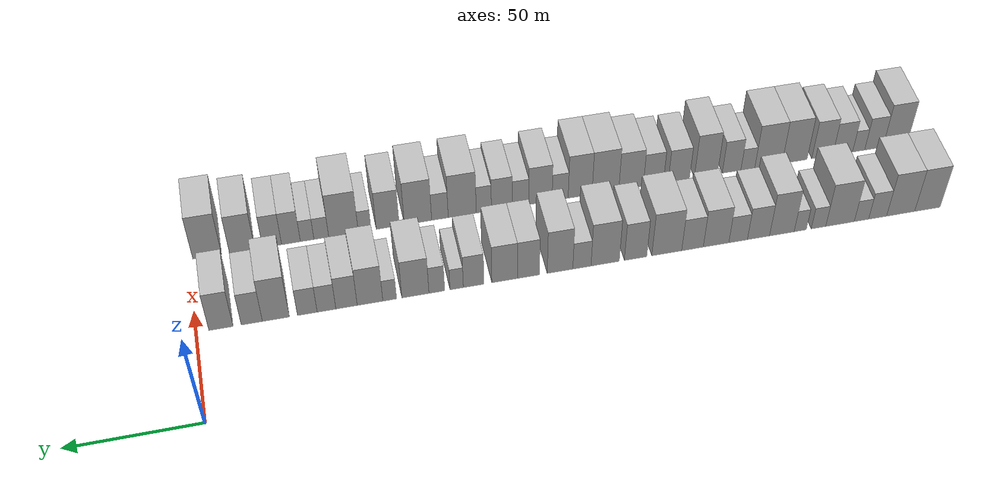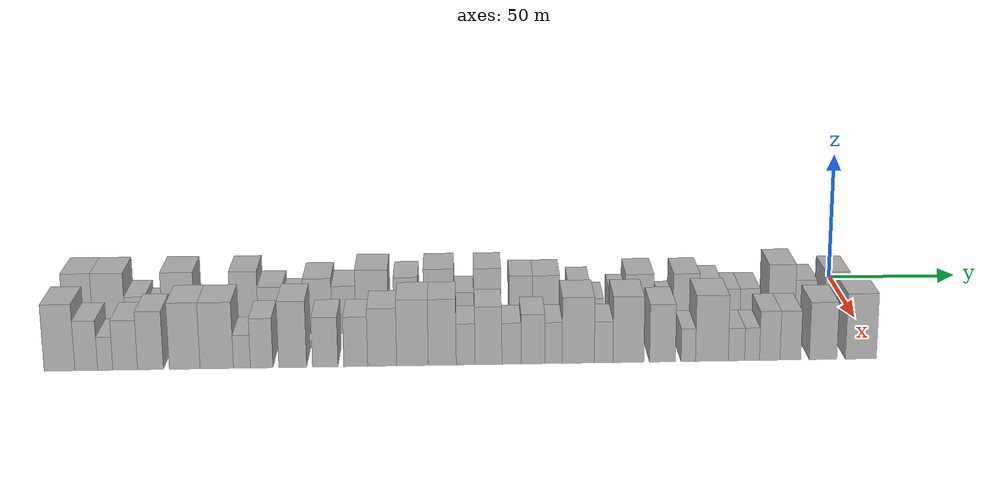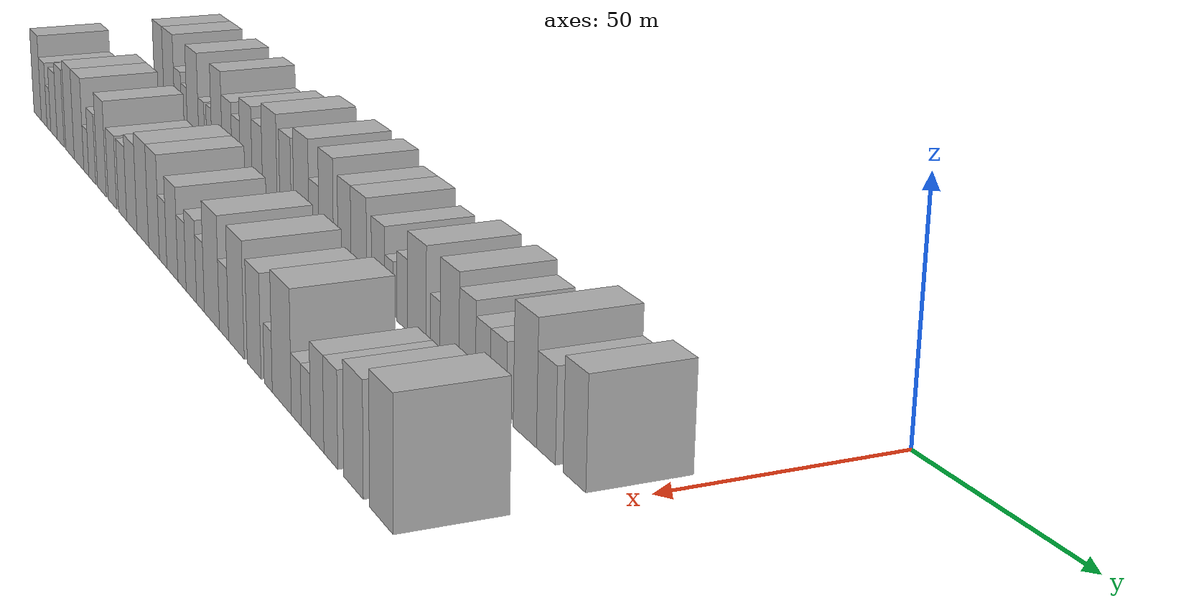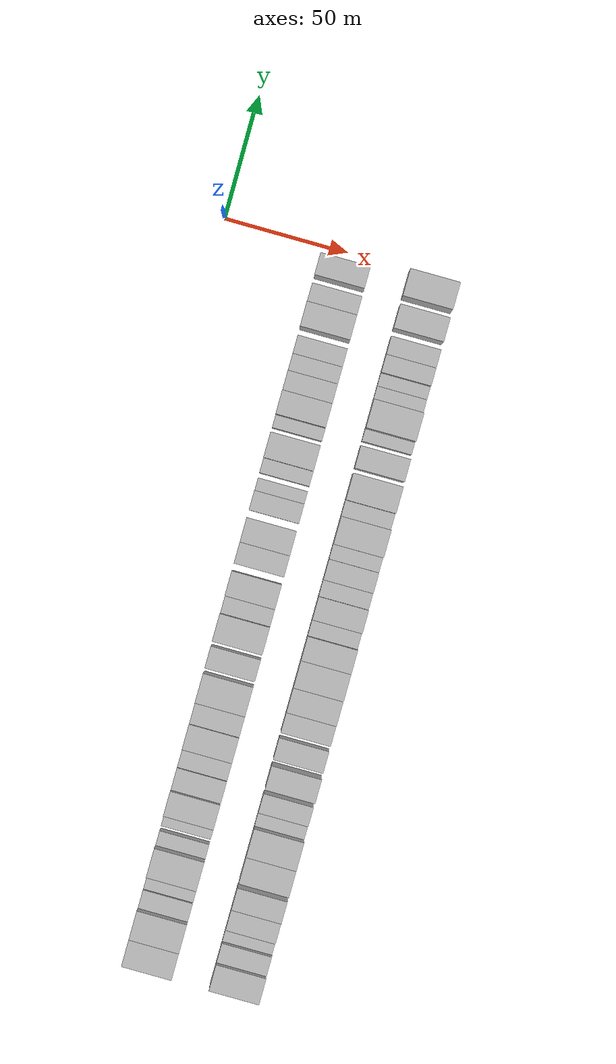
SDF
<sdf version="1.6">
 <world name="default">
  <model name="building_1">
   <static>1</static>
   <pose>50.0000 -284.7026 0 0.000000 0.000000 0.000000</pose>
   <link name="link">
    <pose>0 0 12.00 0 0 0</pose>
    <collision name="collision"><geometry><box><size>20.0000 10.5947 24.0000</size></box></geometry></collision>
    <visual name="visual">
     <cast_shadows>0</cast_shadows>
     <geometry><box><size>20.0000 10.5947 24.0000</size></box></geometry>
     <material>
      <script>
       <uri>model://HANNAS_wall/materials/scripts</uri>
       <uri>model://HANNAS_wall/materials/textures</uri>
       <name>vrc/HANNAS_wall</name>
      </script>
     </material>
    </visual>
   </link>
  </model>
  <model name="building_2">
   <static>1</static>
   <pose>50.0000 -273.5966 0 0.000000 0.000000 0.000000</pose>
   <link name="link">
    <pose>0 0 12.00 0 0 0</pose>
    <collision name="collision"><geometry><box><size>20.0000 11.6172 24.0000</size></box></geometry></collision>
    <visual name="visual">
     <cast_shadows>0</cast_shadows>
     <geometry><box><size>20.0000 11.6172 24.0000</size></box></geometry>
     <material>
      <script>
       <uri>model://HANNAS_wall/materials/scripts</uri>
       <uri>model://HANNAS_wall/materials/textures</uri>
       <name>vrc/HANNAS_wall</name>
      </script>
     </material>
    </visual>
   </link>
  </model>
  <model name="building_3">
   <static>1</static>
   <pose>50.0000 -264.0849 0 0.000000 0.000000 0.000000</pose>
   <link name="link">
    <pose>0 0 7.50 0 0 0</pose>
    <collision name="collision"><geometry><box><size>20.0000 7.4063 15.0000</size></box></geometry></collision>
    <visual name="visual">
     <cast_shadows>0</cast_shadows>
     <geometry><box><size>20.0000 7.4063 15.0000</size></box></geometry>
     <material>
      <script>
       <uri>model://HANNAS_wall/materials/scripts</uri>
       <uri>model://HANNAS_wall/materials/textures</uri>
       <name>vrc/HANNAS_wall</name>
      </script>
     </material>
    </visual>
   </link>
  </model>
  <model name="building_4">
   <static>1</static>
   <pose>50.0000 -257.4461 0 0.000000 0.000000 0.000000</pose>
   <link name="link">
    <pose>0 0 6.00 0 0 0</pose>
    <collision name="collision"><geometry><box><size>20.0000 5.8713 12.0000</size></box></geometry></collision>
    <visual name="visual">
     <cast_shadows>0</cast_shadows>
     <geometry><box><size>20.0000 5.8713 12.0000</size></box></geometry>
     <material>
      <script>
       <uri>model://HANNAS_wall/materials/scripts</uri>
       <uri>model://HANNAS_wall/materials/textures</uri>
       <name>vrc/HANNAS_wall</name>
      </script>
     </material>
    </visual>
   </link>
  </model>
  <model name="building_5">
   <static>1</static>
   <pose>50.0000 -248.6617 0 0.000000 0.000000 0.000000</pose>
   <link name="link">
    <pose>0 0 12.00 0 0 0</pose>
    <collision name="collision"><geometry><box><size>20.0000 11.6974 24.0000</size></box></geometry></collision>
    <visual name="visual">
     <cast_shadows>0</cast_shadows>
     <geometry><box><size>20.0000 11.6974 24.0000</size></box></geometry>
     <material>
      <script>
       <uri>model://HANNAS_wall/materials/scripts</uri>
       <uri>model://HANNAS_wall/materials/textures</uri>
       <name>vrc/HANNAS_wall</name>
      </script>
     </material>
    </visual>
   </link>
  </model>
  <model name="building_6">
   <static>1</static>
   <pose>50.0000 -239.8674 0 0.000000 0.000000 0.000000</pose>
   <link name="link">
    <pose>0 0 6.00 0 0 0</pose>
    <collision name="collision"><geometry><box><size>20.0000 5.8914 12.0000</size></box></geometry></collision>
    <visual name="visual">
     <cast_shadows>0</cast_shadows>
     <geometry><box><size>20.0000 5.8914 12.0000</size></box></geometry>
     <material>
      <script>
       <uri>model://HANNAS_wall/materials/scripts</uri>
       <uri>model://HANNAS_wall/materials/textures</uri>
       <name>vrc/HANNAS_wall</name>
      </script>
     </material>
    </visual>
   </link>
  </model>
  <model name="building_7">
   <static>1</static>
   <pose>50.0000 -232.4474 0 0.000000 0.000000 0.000000</pose>
   <link name="link">
    <pose>0 0 6.00 0 0 0</pose>
    <collision name="collision"><geometry><box><size>20.0000 4.9485 12.0000</size></box></geometry></collision>
    <visual name="visual">
     <cast_shadows>0</cast_shadows>
     <geometry><box><size>20.0000 4.9485 12.0000</size></box></geometry>
     <material>
      <script>
       <uri>model://HANNAS_wall/materials/scripts</uri>
       <uri>model://HANNAS_wall/materials/textures</uri>
       <name>vrc/HANNAS_wall</name>
      </script>
     </material>
    </visual>
   </link>
  </model>
  <model name="building_8">
   <static>1</static>
   <pose>50.0000 -224.9844 0 0.000000 0.000000 0.000000</pose>
   <link name="link">
    <pose>0 0 12.00 0 0 0</pose>
    <collision name="collision"><geometry><box><size>20.0000 9.9776 24.0000</size></box></geometry></collision>
    <visual name="visual">
     <cast_shadows>0</cast_shadows>
     <geometry><box><size>20.0000 9.9776 24.0000</size></box></geometry>
     <material>
      <script>
       <uri>model://HANNAS_wall/materials/scripts</uri>
       <uri>model://HANNAS_wall/materials/textures</uri>
       <name>vrc/HANNAS_wall</name>
      </script>
     </material>
    </visual>
   </link>
  </model>
  <model name="building_9">
   <static>1</static>
   <pose>50.0000 -215.5335 0 0.000000 0.000000 0.000000</pose>
   <link name="link">
    <pose>0 0 9.00 0 0 0</pose>
    <collision name="collision"><geometry><box><size>20.0000 8.9242 18.0000</size></box></geometry></collision>
    <visual name="visual">
     <cast_shadows>0</cast_shadows>
     <geometry><box><size>20.0000 8.9242 18.0000</size></box></geometry>
     <material>
      <script>
       <uri>model://HANNAS_wall/materials/scripts</uri>
       <uri>model://HANNAS_wall/materials/textures</uri>
       <name>vrc/HANNAS_wall</name>
      </script>
     </material>
    </visual>
   </link>
  </model>
  <model name="building_10">
   <static>1</static>
   <pose>50.0000 -207.3426 0 0.000000 0.000000 0.000000</pose>
   <link name="link">
    <pose>0 0 7.50 0 0 0</pose>
    <collision name="collision"><geometry><box><size>20.0000 7.4575 15.0000</size></box></geometry></collision>
    <visual name="visual">
     <cast_shadows>0</cast_shadows>
     <geometry><box><size>20.0000 7.4575 15.0000</size></box></geometry>
     <material>
      <script>
       <uri>model://HANNAS_wall/materials/scripts</uri>
       <uri>model://HANNAS_wall/materials/textures</uri>
       <name>vrc/HANNAS_wall</name>
      </script>
     </material>
    </visual>
   </link>
  </model>
  <model name="building_11">
   <static>1</static>
   <pose>50.0000 -198.5121 0 0.000000 0.000000 0.000000</pose>
   <link name="link">
    <pose>0 0 10.50 0 0 0</pose>
    <collision name="collision"><geometry><box><size>20.0000 10.2037 21.0000</size></box></geometry></collision>
    <visual name="visual">
     <cast_shadows>0</cast_shadows>
     <geometry><box><size>20.0000 10.2037 21.0000</size></box></geometry>
     <material>
      <script>
       <uri>model://HANNAS_wall/materials/scripts</uri>
       <uri>model://HANNAS_wall/materials/textures</uri>
       <name>vrc/HANNAS_wall</name>
      </script>
     </material>
    </visual>
   </link>
  </model>
  <model name="building_12">
   <static>1</static>
   <pose>50.0000 -189.1027 0 0.000000 0.000000 0.000000</pose>
   <link name="link">
    <pose>0 0 9.00 0 0 0</pose>
    <collision name="collision"><geometry><box><size>20.0000 8.6149 18.0000</size></box></geometry></collision>
    <visual name="visual">
     <cast_shadows>0</cast_shadows>
     <geometry><box><size>20.0000 8.6149 18.0000</size></box></geometry>
     <material>
      <script>
       <uri>model://HANNAS_wall/materials/scripts</uri>
       <uri>model://HANNAS_wall/materials/textures</uri>
       <name>vrc/HANNAS_wall</name>
      </script>
     </material>
    </visual>
   </link>
  </model>
  <model name="building_13">
   <static>1</static>
   <pose>50.0000 -178.8727 0 0.000000 0.000000 0.000000</pose>
   <link name="link">
    <pose>0 0 12.00 0 0 0</pose>
    <collision name="collision"><geometry><box><size>20.0000 11.8451 24.0000</size></box></geometry></collision>
    <visual name="visual">
     <cast_shadows>0</cast_shadows>
     <geometry><box><size>20.0000 11.8451 24.0000</size></box></geometry>
     <material>
      <script>
       <uri>model://HANNAS_wall/materials/scripts</uri>
       <uri>model://HANNAS_wall/materials/textures</uri>
       <name>vrc/HANNAS_wall</name>
      </script>
     </material>
    </visual>
   </link>
  </model>
  <model name="building_14">
   <static>1</static>
   <pose>50.0000 -166.5378 0 0.000000 0.000000 0.000000</pose>
   <link name="link">
    <pose>0 0 10.50 0 0 0</pose>
    <collision name="collision"><geometry><box><size>20.0000 8.8249 21.0000</size></box></geometry></collision>
    <visual name="visual">
     <cast_shadows>0</cast_shadows>
     <geometry><box><size>20.0000 8.8249 21.0000</size></box></geometry>
     <material>
      <script>
       <uri>model://HANNAS_wall/materials/scripts</uri>
       <uri>model://HANNAS_wall/materials/textures</uri>
       <name>vrc/HANNAS_wall</name>
      </script>
     </material>
    </visual>
   </link>
  </model>
  <model name="building_15">
   <static>1</static>
   <pose>50.0000 -154.5810 0 0.000000 0.000000 0.000000</pose>
   <link name="link">
    <pose>0 0 12.00 0 0 0</pose>
    <collision name="collision"><geometry><box><size>20.0000 11.0885 24.0000</size></box></geometry></collision>
    <visual name="visual">
     <cast_shadows>0</cast_shadows>
     <geometry><box><size>20.0000 11.0885 24.0000</size></box></geometry>
     <material>
      <script>
       <uri>model://HANNAS_wall/materials/scripts</uri>
       <uri>model://HANNAS_wall/materials/textures</uri>
       <name>vrc/HANNAS_wall</name>
      </script>
     </material>
    </visual>
   </link>
  </model>
  <model name="building_16">
   <static>1</static>
   <pose>50.0000 -145.4833 0 0.000000 0.000000 0.000000</pose>
   <link name="link">
    <pose>0 0 7.50 0 0 0</pose>
    <collision name="collision"><geometry><box><size>20.0000 7.1070 15.0000</size></box></geometry></collision>
    <visual name="visual">
     <cast_shadows>0</cast_shadows>
     <geometry><box><size>20.0000 7.1070 15.0000</size></box></geometry>
     <material>
      <script>
       <uri>model://HANNAS_wall/materials/scripts</uri>
       <uri>model://HANNAS_wall/materials/textures</uri>
       <name>vrc/HANNAS_wall</name>
      </script>
     </material>
    </visual>
   </link>
  </model>
  <model name="building_17">
   <static>1</static>
   <pose>50.0000 -136.9539 0 0.000000 0.000000 0.000000</pose>
   <link name="link">
    <pose>0 0 12.00 0 0 0</pose>
    <collision name="collision"><geometry><box><size>20.0000 9.9518 24.0000</size></box></geometry></collision>
    <visual name="visual">
     <cast_shadows>0</cast_shadows>
     <geometry><box><size>20.0000 9.9518 24.0000</size></box></geometry>
     <material>
      <script>
       <uri>model://HANNAS_wall/materials/scripts</uri>
       <uri>model://HANNAS_wall/materials/textures</uri>
       <name>vrc/HANNAS_wall</name>
      </script>
     </material>
    </visual>
   </link>
  </model>
  <model name="building_18">
   <static>1</static>
   <pose>50.0000 -124.7235 0 0.000000 0.000000 0.000000</pose>
   <link name="link">
    <pose>0 0 10.50 0 0 0</pose>
    <collision name="collision"><geometry><box><size>20.0000 8.5091 21.0000</size></box></geometry></collision>
    <visual name="visual">
     <cast_shadows>0</cast_shadows>
     <geometry><box><size>20.0000 8.5091 21.0000</size></box></geometry>
     <material>
      <script>
       <uri>model://HANNAS_wall/materials/scripts</uri>
       <uri>model://HANNAS_wall/materials/textures</uri>
       <name>vrc/HANNAS_wall</name>
      </script>
     </material>
    </visual>
   </link>
  </model>
  <model name="building_19">
   <static>1</static>
   <pose>50.0000 -115.5313 0 0.000000 0.000000 0.000000</pose>
   <link name="link">
    <pose>0 0 10.50 0 0 0</pose>
    <collision name="collision"><geometry><box><size>20.0000 9.8753 21.0000</size></box></geometry></collision>
    <visual name="visual">
     <cast_shadows>0</cast_shadows>
     <geometry><box><size>20.0000 9.8753 21.0000</size></box></geometry>
     <material>
      <script>
       <uri>model://HANNAS_wall/materials/scripts</uri>
       <uri>model://HANNAS_wall/materials/textures</uri>
       <name>vrc/HANNAS_wall</name>
      </script>
     </material>
    </visual>
   </link>
  </model>
  <model name="building_20">
   <static>1</static>
   <pose>50.0000 -103.6340 0 0.000000 0.000000 0.000000</pose>
   <link name="link">
    <pose>0 0 9.00 0 0 0</pose>
    <collision name="collision"><geometry><box><size>20.0000 7.9193 18.0000</size></box></geometry></collision>
    <visual name="visual">
     <cast_shadows>0</cast_shadows>
     <geometry><box><size>20.0000 7.9193 18.0000</size></box></geometry>
     <material>
      <script>
       <uri>model://HANNAS_wall/materials/scripts</uri>
       <uri>model://HANNAS_wall/materials/textures</uri>
       <name>vrc/HANNAS_wall</name>
      </script>
     </material>
    </visual>
   </link>
  </model>
  <model name="building_21">
   <static>1</static>
   <pose>50.0000 -97.1221 0 0.000000 0.000000 0.000000</pose>
   <link name="link">
    <pose>0 0 6.00 0 0 0</pose>
    <collision name="collision"><geometry><box><size>20.0000 5.1045 12.0000</size></box></geometry></collision>
    <visual name="visual">
     <cast_shadows>0</cast_shadows>
     <geometry><box><size>20.0000 5.1045 12.0000</size></box></geometry>
     <material>
      <script>
       <uri>model://HANNAS_wall/materials/scripts</uri>
       <uri>model://HANNAS_wall/materials/textures</uri>
       <name>vrc/HANNAS_wall</name>
      </script>
     </material>
    </visual>
   </link>
  </model>
  <model name="building_22">
   <static>1</static>
   <pose>50.0000 -89.5682 0 0.000000 0.000000 0.000000</pose>
   <link name="link">
    <pose>0 0 7.50 0 0 0</pose>
    <collision name="collision"><geometry><box><size>20.0000 6.0033 15.0000</size></box></geometry></collision>
    <visual name="visual">
     <cast_shadows>0</cast_shadows>
     <geometry><box><size>20.0000 6.0033 15.0000</size></box></geometry>
     <material>
      <script>
       <uri>model://HANNAS_wall/materials/scripts</uri>
       <uri>model://HANNAS_wall/materials/textures</uri>
       <name>vrc/HANNAS_wall</name>
      </script>
     </material>
    </visual>
   </link>
  </model>
  <model name="building_23">
   <static>1</static>
   <pose>50.0000 -81.4354 0 0.000000 0.000000 0.000000</pose>
   <link name="link">
    <pose>0 0 10.50 0 0 0</pose>
    <collision name="collision"><geometry><box><size>20.0000 10.2623 21.0000</size></box></geometry></collision>
    <visual name="visual">
     <cast_shadows>0</cast_shadows>
     <geometry><box><size>20.0000 10.2623 21.0000</size></box></geometry>
     <material>
      <script>
       <uri>model://HANNAS_wall/materials/scripts</uri>
       <uri>model://HANNAS_wall/materials/textures</uri>
       <name>vrc/HANNAS_wall</name>
      </script>
     </material>
    </visual>
   </link>
  </model>
  <model name="building_24">
   <static>1</static>
   <pose>50.0000 -71.7122 0 0.000000 0.000000 0.000000</pose>
   <link name="link">
    <pose>0 0 6.00 0 0 0</pose>
    <collision name="collision"><geometry><box><size>20.0000 5.1841 12.0000</size></box></geometry></collision>
    <visual name="visual">
     <cast_shadows>0</cast_shadows>
     <geometry><box><size>20.0000 5.1841 12.0000</size></box></geometry>
     <material>
      <script>
       <uri>model://HANNAS_wall/materials/scripts</uri>
       <uri>model://HANNAS_wall/materials/textures</uri>
       <name>vrc/HANNAS_wall</name>
      </script>
     </material>
    </visual>
   </link>
  </model>
  <model name="building_25">
   <static>1</static>
   <pose>50.0000 -64.2973 0 0.000000 0.000000 0.000000</pose>
   <link name="link">
    <pose>0 0 10.50 0 0 0</pose>
    <collision name="collision"><geometry><box><size>20.0000 9.6455 21.0000</size></box></geometry></collision>
    <visual name="visual">
     <cast_shadows>0</cast_shadows>
     <geometry><box><size>20.0000 9.6455 21.0000</size></box></geometry>
     <material>
      <script>
       <uri>model://HANNAS_wall/materials/scripts</uri>
       <uri>model://HANNAS_wall/materials/textures</uri>
       <name>vrc/HANNAS_wall</name>
      </script>
     </material>
    </visual>
   </link>
  </model>
  <model name="building_26">
   <static>1</static>
   <pose>50.0000 -55.4743 0 0.000000 0.000000 0.000000</pose>
   <link name="link">
    <pose>0 0 9.00 0 0 0</pose>
    <collision name="collision"><geometry><box><size>20.0000 8.0005 18.0000</size></box></geometry></collision>
    <visual name="visual">
     <cast_shadows>0</cast_shadows>
     <geometry><box><size>20.0000 8.0005 18.0000</size></box></geometry>
     <material>
      <script>
       <uri>model://HANNAS_wall/materials/scripts</uri>
       <uri>model://HANNAS_wall/materials/textures</uri>
       <name>vrc/HANNAS_wall</name>
      </script>
     </material>
    </visual>
   </link>
  </model>
  <model name="building_27">
   <static>1</static>
   <pose>50.0000 -47.9953 0 0.000000 0.000000 0.000000</pose>
   <link name="link">
    <pose>0 0 7.50 0 0 0</pose>
    <collision name="collision"><geometry><box><size>20.0000 6.9575 15.0000</size></box></geometry></collision>
    <visual name="visual">
     <cast_shadows>0</cast_shadows>
     <geometry><box><size>20.0000 6.9575 15.0000</size></box></geometry>
     <material>
      <script>
       <uri>model://HANNAS_wall/materials/scripts</uri>
       <uri>model://HANNAS_wall/materials/textures</uri>
       <name>vrc/HANNAS_wall</name>
      </script>
     </material>
    </visual>
   </link>
  </model>
  <model name="building_28">
   <static>1</static>
   <pose>50.0000 -40.8460 0 0.000000 0.000000 0.000000</pose>
   <link name="link">
    <pose>0 0 7.50 0 0 0</pose>
    <collision name="collision"><geometry><box><size>20.0000 7.3411 15.0000</size></box></geometry></collision>
    <visual name="visual">
     <cast_shadows>0</cast_shadows>
     <geometry><box><size>20.0000 7.3411 15.0000</size></box></geometry>
     <material>
      <script>
       <uri>model://HANNAS_wall/materials/scripts</uri>
       <uri>model://HANNAS_wall/materials/textures</uri>
       <name>vrc/HANNAS_wall</name>
      </script>
     </material>
    </visual>
   </link>
  </model>
  <model name="building_29">
   <static>1</static>
   <pose>50.0000 -29.1868 0 0.000000 0.000000 0.000000</pose>
   <link name="link">
    <pose>0 0 12.00 0 0 0</pose>
    <collision name="collision"><geometry><box><size>20.0000 9.9773 24.0000</size></box></geometry></collision>
    <visual name="visual">
     <cast_shadows>0</cast_shadows>
     <geometry><box><size>20.0000 9.9773 24.0000</size></box></geometry>
     <material>
      <script>
       <uri>model://HANNAS_wall/materials/scripts</uri>
       <uri>model://HANNAS_wall/materials/textures</uri>
       <name>vrc/HANNAS_wall</name>
      </script>
     </material>
    </visual>
   </link>
  </model>
  <model name="building_30">
   <static>1</static>
   <pose>50.0000 -20.2898 0 0.000000 0.000000 0.000000</pose>
   <link name="link">
    <pose>0 0 9.00 0 0 0</pose>
    <collision name="collision"><geometry><box><size>20.0000 7.8167 18.0000</size></box></geometry></collision>
    <visual name="visual">
     <cast_shadows>0</cast_shadows>
     <geometry><box><size>20.0000 7.8167 18.0000</size></box></geometry>
     <material>
      <script>
       <uri>model://HANNAS_wall/materials/scripts</uri>
       <uri>model://HANNAS_wall/materials/textures</uri>
       <name>vrc/HANNAS_wall</name>
      </script>
     </material>
    </visual>
   </link>
  </model>
  <model name="building_31">
   <static>1</static>
   <pose>50.0000 -8.9502 0 0.000000 0.000000 0.000000</pose>
   <link name="link">
    <pose>0 0 10.50 0 0 0</pose>
    <collision name="collision"><geometry><box><size>20.0000 8.8623 21.0000</size></box></geometry></collision>
    <visual name="visual">
     <cast_shadows>0</cast_shadows>
     <geometry><box><size>20.0000 8.8623 21.0000</size></box></geometry>
     <material>
      <script>
       <uri>model://HANNAS_wall/materials/scripts</uri>
       <uri>model://HANNAS_wall/materials/textures</uri>
       <name>vrc/HANNAS_wall</name>
      </script>
     </material>
    </visual>
   </link>
  </model>
  <model name="building_64">
   <static>1</static>
   <pose>85.0000 -284.7613 0 0.000000 0.000000 0.000000</pose>
   <link name="link">
    <pose>0 0 12.00 0 0 0</pose>
    <collision name="collision"><geometry><box><size>20.0000 10.4775 24.0000</size></box></geometry></collision>
    <visual name="visual">
     <cast_shadows>0</cast_shadows>
     <geometry><box><size>20.0000 10.4775 24.0000</size></box></geometry>
     <material>
      <script>
       <uri>model://HANNAS_wall/materials/scripts</uri>
       <uri>model://HANNAS_wall/materials/textures</uri>
       <name>vrc/HANNAS_wall</name>
      </script>
     </material>
    </visual>
   </link>
  </model>
  <model name="building_65">
   <static>1</static>
   <pose>85.0000 -275.6308 0 0.000000 0.000000 0.000000</pose>
   <link name="link">
    <pose>0 0 9.00 0 0 0</pose>
    <collision name="collision"><geometry><box><size>20.0000 7.7834 18.0000</size></box></geometry></collision>
    <visual name="visual">
     <cast_shadows>0</cast_shadows>
     <geometry><box><size>20.0000 7.7834 18.0000</size></box></geometry>
     <material>
      <script>
       <uri>model://HANNAS_wall/materials/scripts</uri>
       <uri>model://HANNAS_wall/materials/textures</uri>
       <name>vrc/HANNAS_wall</name>
      </script>
     </material>
    </visual>
   </link>
  </model>
  <model name="building_66">
   <static>1</static>
   <pose>85.0000 -269.1593 0 0.000000 0.000000 0.000000</pose>
   <link name="link">
    <pose>0 0 6.00 0 0 0</pose>
    <collision name="collision"><geometry><box><size>20.0000 5.1596 12.0000</size></box></geometry></collision>
    <visual name="visual">
     <cast_shadows>0</cast_shadows>
     <geometry><box><size>20.0000 5.1596 12.0000</size></box></geometry>
     <material>
      <script>
       <uri>model://HANNAS_wall/materials/scripts</uri>
       <uri>model://HANNAS_wall/materials/textures</uri>
       <name>vrc/HANNAS_wall</name>
      </script>
     </material>
    </visual>
   </link>
  </model>
  <model name="building_67">
   <static>1</static>
   <pose>85.0000 -262.3439 0 0.000000 0.000000 0.000000</pose>
   <link name="link">
    <pose>0 0 9.00 0 0 0</pose>
    <collision name="collision"><geometry><box><size>20.0000 8.4711 18.0000</size></box></geometry></collision>
    <visual name="visual">
     <cast_shadows>0</cast_shadows>
     <geometry><box><size>20.0000 8.4711 18.0000</size></box></geometry>
     <material>
      <script>
       <uri>model://HANNAS_wall/materials/scripts</uri>
       <uri>model://HANNAS_wall/materials/textures</uri>
       <name>vrc/HANNAS_wall</name>
      </script>
     </material>
    </visual>
   </link>
  </model>
  <model name="building_68">
   <static>1</static>
   <pose>85.0000 -253.6796 0 0.000000 0.000000 0.000000</pose>
   <link name="link">
    <pose>0 0 10.50 0 0 0</pose>
    <collision name="collision"><geometry><box><size>20.0000 8.8575 21.0000</size></box></geometry></collision>
    <visual name="visual">
     <cast_shadows>0</cast_shadows>
     <geometry><box><size>20.0000 8.8575 21.0000</size></box></geometry>
     <material>
      <script>
       <uri>model://HANNAS_wall/materials/scripts</uri>
       <uri>model://HANNAS_wall/materials/textures</uri>
       <name>vrc/HANNAS_wall</name>
      </script>
     </material>
    </visual>
   </link>
  </model>
  <model name="building_69">
   <static>1</static>
   <pose>85.0000 -241.9829 0 0.000000 0.000000 0.000000</pose>
   <link name="link">
    <pose>0 0 12.00 0 0 0</pose>
    <collision name="collision"><geometry><box><size>20.0000 10.5358 24.0000</size></box></geometry></collision>
    <visual name="visual">
     <cast_shadows>0</cast_shadows>
     <geometry><box><size>20.0000 10.5358 24.0000</size></box></geometry>
     <material>
      <script>
       <uri>model://HANNAS_wall/materials/scripts</uri>
       <uri>model://HANNAS_wall/materials/textures</uri>
       <name>vrc/HANNAS_wall</name>
      </script>
     </material>
    </visual>
   </link>
  </model>
  <model name="building_70">
   <static>1</static>
   <pose>85.0000 -230.9870 0 0.000000 0.000000 0.000000</pose>
   <link name="link">
    <pose>0 0 12.00 0 0 0</pose>
    <collision name="collision"><geometry><box><size>20.0000 11.4560 24.0000</size></box></geometry></collision>
    <visual name="visual">
     <cast_shadows>0</cast_shadows>
     <geometry><box><size>20.0000 11.4560 24.0000</size></box></geometry>
     <material>
      <script>
       <uri>model://HANNAS_wall/materials/scripts</uri>
       <uri>model://HANNAS_wall/materials/textures</uri>
       <name>vrc/HANNAS_wall</name>
      </script>
     </material>
    </visual>
   </link>
  </model>
  <model name="building_71">
   <static>1</static>
   <pose>85.0000 -222.3608 0 0.000000 0.000000 0.000000</pose>
   <link name="link">
    <pose>0 0 6.00 0 0 0</pose>
    <collision name="collision"><geometry><box><size>20.0000 5.7964 12.0000</size></box></geometry></collision>
    <visual name="visual">
     <cast_shadows>0</cast_shadows>
     <geometry><box><size>20.0000 5.7964 12.0000</size></box></geometry>
     <material>
      <script>
       <uri>model://HANNAS_wall/materials/scripts</uri>
       <uri>model://HANNAS_wall/materials/textures</uri>
       <name>vrc/HANNAS_wall</name>
      </script>
     </material>
    </visual>
   </link>
  </model>
  <model name="building_72">
   <static>1</static>
   <pose>85.0000 -215.5773 0 0.000000 0.000000 0.000000</pose>
   <link name="link">
    <pose>0 0 9.00 0 0 0</pose>
    <collision name="collision"><geometry><box><size>20.0000 7.7707 18.0000</size></box></geometry></collision>
    <visual name="visual">
     <cast_shadows>0</cast_shadows>
     <geometry><box><size>20.0000 7.7707 18.0000</size></box></geometry>
     <material>
      <script>
       <uri>model://HANNAS_wall/materials/scripts</uri>
       <uri>model://HANNAS_wall/materials/textures</uri>
       <name>vrc/HANNAS_wall</name>
      </script>
     </material>
    </visual>
   </link>
  </model>
  <model name="building_73">
   <static>1</static>
   <pose>85.0000 -204.8902 0 0.000000 0.000000 0.000000</pose>
   <link name="link">
    <pose>0 0 12.00 0 0 0</pose>
    <collision name="collision"><geometry><box><size>20.0000 9.6035 24.0000</size></box></geometry></collision>
    <visual name="visual">
     <cast_shadows>0</cast_shadows>
     <geometry><box><size>20.0000 9.6035 24.0000</size></box></geometry>
     <material>
      <script>
       <uri>model://HANNAS_wall/materials/scripts</uri>
       <uri>model://HANNAS_wall/materials/textures</uri>
       <name>vrc/HANNAS_wall</name>
      </script>
     </material>
    </visual>
   </link>
  </model>
  <model name="building_74">
   <static>1</static>
   <pose>85.0000 -193.6835 0 0.000000 0.000000 0.000000</pose>
   <link name="link">
    <pose>0 0 9.00 0 0 0</pose>
    <collision name="collision"><geometry><box><size>20.0000 8.8098 18.0000</size></box></geometry></collision>
    <visual name="visual">
     <cast_shadows>0</cast_shadows>
     <geometry><box><size>20.0000 8.8098 18.0000</size></box></geometry>
     <material>
      <script>
       <uri>model://HANNAS_wall/materials/scripts</uri>
       <uri>model://HANNAS_wall/materials/textures</uri>
       <name>vrc/HANNAS_wall</name>
      </script>
     </material>
    </visual>
   </link>
  </model>
  <model name="building_75">
   <static>1</static>
   <pose>85.0000 -183.1544 0 0.000000 0.000000 0.000000</pose>
   <link name="link">
    <pose>0 0 9.00 0 0 0</pose>
    <collision name="collision"><geometry><box><size>20.0000 8.2483 18.0000</size></box></geometry></collision>
    <visual name="visual">
     <cast_shadows>0</cast_shadows>
     <geometry><box><size>20.0000 8.2483 18.0000</size></box></geometry>
     <material>
      <script>
       <uri>model://HANNAS_wall/materials/scripts</uri>
       <uri>model://HANNAS_wall/materials/textures</uri>
       <name>vrc/HANNAS_wall</name>
      </script>
     </material>
    </visual>
   </link>
  </model>
  <model name="building_76">
   <static>1</static>
   <pose>85.0000 -174.0194 0 0.000000 0.000000 0.000000</pose>
   <link name="link">
    <pose>0 0 10.50 0 0 0</pose>
    <collision name="collision"><geometry><box><size>20.0000 10.0217 21.0000</size></box></geometry></collision>
    <visual name="visual">
     <cast_shadows>0</cast_shadows>
     <geometry><box><size>20.0000 10.0217 21.0000</size></box></geometry>
     <material>
      <script>
       <uri>model://HANNAS_wall/materials/scripts</uri>
       <uri>model://HANNAS_wall/materials/textures</uri>
       <name>vrc/HANNAS_wall</name>
      </script>
     </material>
    </visual>
   </link>
  </model>
  <model name="building_77">
   <static>1</static>
   <pose>85.0000 -163.5509 0 0.000000 0.000000 0.000000</pose>
   <link name="link">
    <pose>0 0 12.00 0 0 0</pose>
    <collision name="collision"><geometry><box><size>20.0000 10.9154 24.0000</size></box></geometry></collision>
    <visual name="visual">
     <cast_shadows>0</cast_shadows>
     <geometry><box><size>20.0000 10.9154 24.0000</size></box></geometry>
     <material>
      <script>
       <uri>model://HANNAS_wall/materials/scripts</uri>
       <uri>model://HANNAS_wall/materials/textures</uri>
       <name>vrc/HANNAS_wall</name>
      </script>
     </material>
    </visual>
   </link>
  </model>
  <model name="building_78">
   <static>1</static>
   <pose>85.0000 -153.2429 0 0.000000 0.000000 0.000000</pose>
   <link name="link">
    <pose>0 0 12.00 0 0 0</pose>
    <collision name="collision"><geometry><box><size>20.0000 9.7006 24.0000</size></box></geometry></collision>
    <visual name="visual">
     <cast_shadows>0</cast_shadows>
     <geometry><box><size>20.0000 9.7006 24.0000</size></box></geometry>
     <material>
      <script>
       <uri>model://HANNAS_wall/materials/scripts</uri>
       <uri>model://HANNAS_wall/materials/textures</uri>
       <name>vrc/HANNAS_wall</name>
      </script>
     </material>
    </visual>
   </link>
  </model>
  <model name="building_79">
   <static>1</static>
   <pose>85.0000 -145.1416 0 0.000000 0.000000 0.000000</pose>
   <link name="link">
    <pose>0 0 7.50 0 0 0</pose>
    <collision name="collision"><geometry><box><size>20.0000 6.5019 15.0000</size></box></geometry></collision>
    <visual name="visual">
     <cast_shadows>0</cast_shadows>
     <geometry><box><size>20.0000 6.5019 15.0000</size></box></geometry>
     <material>
      <script>
       <uri>model://HANNAS_wall/materials/scripts</uri>
       <uri>model://HANNAS_wall/materials/textures</uri>
       <name>vrc/HANNAS_wall</name>
      </script>
     </material>
    </visual>
   </link>
  </model>
  <model name="building_80">
   <static>1</static>
   <pose>85.0000 -137.2060 0 0.000000 0.000000 0.000000</pose>
   <link name="link">
    <pose>0 0 10.50 0 0 0</pose>
    <collision name="collision"><geometry><box><size>20.0000 9.3695 21.0000</size></box></geometry></collision>
    <visual name="visual">
     <cast_shadows>0</cast_shadows>
     <geometry><box><size>20.0000 9.3695 21.0000</size></box></geometry>
     <material>
      <script>
       <uri>model://HANNAS_wall/materials/scripts</uri>
       <uri>model://HANNAS_wall/materials/textures</uri>
       <name>vrc/HANNAS_wall</name>
      </script>
     </material>
    </visual>
   </link>
  </model>
  <model name="building_81">
   <static>1</static>
   <pose>85.0000 -129.1903 0 0.000000 0.000000 0.000000</pose>
   <link name="link">
    <pose>0 0 7.50 0 0 0</pose>
    <collision name="collision"><geometry><box><size>20.0000 6.6618 15.0000</size></box></geometry></collision>
    <visual name="visual">
     <cast_shadows>0</cast_shadows>
     <geometry><box><size>20.0000 6.6618 15.0000</size></box></geometry>
     <material>
      <script>
       <uri>model://HANNAS_wall/materials/scripts</uri>
       <uri>model://HANNAS_wall/materials/textures</uri>
       <name>vrc/HANNAS_wall</name>
      </script>
     </material>
    </visual>
   </link>
  </model>
  <model name="building_82">
   <static>1</static>
   <pose>85.0000 -121.7054 0 0.000000 0.000000 0.000000</pose>
   <link name="link">
    <pose>0 0 9.00 0 0 0</pose>
    <collision name="collision"><geometry><box><size>20.0000 8.3081 18.0000</size></box></geometry></collision>
    <visual name="visual">
     <cast_shadows>0</cast_shadows>
     <geometry><box><size>20.0000 8.3081 18.0000</size></box></geometry>
     <material>
      <script>
       <uri>model://HANNAS_wall/materials/scripts</uri>
       <uri>model://HANNAS_wall/materials/textures</uri>
       <name>vrc/HANNAS_wall</name>
      </script>
     </material>
    </visual>
   </link>
  </model>
  <model name="building_83">
   <static>1</static>
   <pose>85.0000 -114.5368 0 0.000000 0.000000 0.000000</pose>
   <link name="link">
    <pose>0 0 7.50 0 0 0</pose>
    <collision name="collision"><geometry><box><size>20.0000 6.0290 15.0000</size></box></geometry></collision>
    <visual name="visual">
     <cast_shadows>0</cast_shadows>
     <geometry><box><size>20.0000 6.0290 15.0000</size></box></geometry>
     <material>
      <script>
       <uri>model://HANNAS_wall/materials/scripts</uri>
       <uri>model://HANNAS_wall/materials/textures</uri>
       <name>vrc/HANNAS_wall</name>
      </script>
     </material>
    </visual>
   </link>
  </model>
  <model name="building_84">
   <static>1</static>
   <pose>85.0000 -105.9471 0 0.000000 0.000000 0.000000</pose>
   <link name="link">
    <pose>0 0 12.00 0 0 0</pose>
    <collision name="collision"><geometry><box><size>20.0000 11.1506 24.0000</size></box></geometry></collision>
    <visual name="visual">
     <cast_shadows>0</cast_shadows>
     <geometry><box><size>20.0000 11.1506 24.0000</size></box></geometry>
     <material>
      <script>
       <uri>model://HANNAS_wall/materials/scripts</uri>
       <uri>model://HANNAS_wall/materials/textures</uri>
       <name>vrc/HANNAS_wall</name>
      </script>
     </material>
    </visual>
   </link>
  </model>
  <model name="building_85">
   <static>1</static>
   <pose>85.0000 -97.0965 0 0.000000 0.000000 0.000000</pose>
   <link name="link">
    <pose>0 0 7.50 0 0 0</pose>
    <collision name="collision"><geometry><box><size>20.0000 6.5507 15.0000</size></box></geometry></collision>
    <visual name="visual">
     <cast_shadows>0</cast_shadows>
     <geometry><box><size>20.0000 6.5507 15.0000</size></box></geometry>
     <material>
      <script>
       <uri>model://HANNAS_wall/materials/scripts</uri>
       <uri>model://HANNAS_wall/materials/textures</uri>
       <name>vrc/HANNAS_wall</name>
      </script>
     </material>
    </visual>
   </link>
  </model>
  <model name="building_86">
   <static>1</static>
   <pose>85.0000 -88.4462 0 0.000000 0.000000 0.000000</pose>
   <link name="link">
    <pose>0 0 12.00 0 0 0</pose>
    <collision name="collision"><geometry><box><size>20.0000 10.7499 24.0000</size></box></geometry></collision>
    <visual name="visual">
     <cast_shadows>0</cast_shadows>
     <geometry><box><size>20.0000 10.7499 24.0000</size></box></geometry>
     <material>
      <script>
       <uri>model://HANNAS_wall/materials/scripts</uri>
       <uri>model://HANNAS_wall/materials/textures</uri>
       <name>vrc/HANNAS_wall</name>
      </script>
     </material>
    </visual>
   </link>
  </model>
  <model name="building_87">
   <static>1</static>
   <pose>85.0000 -76.5541 0 0.000000 0.000000 0.000000</pose>
   <link name="link">
    <pose>0 0 10.50 0 0 0</pose>
    <collision name="collision"><geometry><box><size>20.0000 9.0344 21.0000</size></box></geometry></collision>
    <visual name="visual">
     <cast_shadows>0</cast_shadows>
     <geometry><box><size>20.0000 9.0344 21.0000</size></box></geometry>
     <material>
      <script>
       <uri>model://HANNAS_wall/materials/scripts</uri>
       <uri>model://HANNAS_wall/materials/textures</uri>
       <name>vrc/HANNAS_wall</name>
      </script>
     </material>
    </visual>
   </link>
  </model>
  <model name="building_88">
   <static>1</static>
   <pose>85.0000 -67.5239 0 0.000000 0.000000 0.000000</pose>
   <link name="link">
    <pose>0 0 6.00 0 0 0</pose>
    <collision name="collision"><geometry><box><size>20.0000 5.0260 12.0000</size></box></geometry></collision>
    <visual name="visual">
     <cast_shadows>0</cast_shadows>
     <geometry><box><size>20.0000 5.0260 12.0000</size></box></geometry>
     <material>
      <script>
       <uri>model://HANNAS_wall/materials/scripts</uri>
       <uri>model://HANNAS_wall/materials/textures</uri>
       <name>vrc/HANNAS_wall</name>
      </script>
     </material>
    </visual>
   </link>
  </model>
  <model name="building_89">
   <static>1</static>
   <pose>85.0000 -59.2547 0 0.000000 0.000000 0.000000</pose>
   <link name="link">
    <pose>0 0 12.00 0 0 0</pose>
    <collision name="collision"><geometry><box><size>20.0000 11.5123 24.0000</size></box></geometry></collision>
    <visual name="visual">
     <cast_shadows>0</cast_shadows>
     <geometry><box><size>20.0000 11.5123 24.0000</size></box></geometry>
     <material>
      <script>
       <uri>model://HANNAS_wall/materials/scripts</uri>
       <uri>model://HANNAS_wall/materials/textures</uri>
       <name>vrc/HANNAS_wall</name>
      </script>
     </material>
    </visual>
   </link>
  </model>
  <model name="building_90">
   <static>1</static>
   <pose>85.0000 -50.6368 0 0.000000 0.000000 0.000000</pose>
   <link name="link">
    <pose>0 0 6.00 0 0 0</pose>
    <collision name="collision"><geometry><box><size>20.0000 5.7234 12.0000</size></box></geometry></collision>
    <visual name="visual">
     <cast_shadows>0</cast_shadows>
     <geometry><box><size>20.0000 5.7234 12.0000</size></box></geometry>
     <material>
      <script>
       <uri>model://HANNAS_wall/materials/scripts</uri>
       <uri>model://HANNAS_wall/materials/textures</uri>
       <name>vrc/HANNAS_wall</name>
      </script>
     </material>
    </visual>
   </link>
  </model>
  <model name="building_91">
   <static>1</static>
   <pose>85.0000 -45.1607 0 0.000000 0.000000 0.000000</pose>
   <link name="link">
    <pose>0 0 6.00 0 0 0</pose>
    <collision name="collision"><geometry><box><size>20.0000 5.2288 12.0000</size></box></geometry></collision>
    <visual name="visual">
     <cast_shadows>0</cast_shadows>
     <geometry><box><size>20.0000 5.2288 12.0000</size></box></geometry>
     <material>
      <script>
       <uri>model://HANNAS_wall/materials/scripts</uri>
       <uri>model://HANNAS_wall/materials/textures</uri>
       <name>vrc/HANNAS_wall</name>
      </script>
     </material>
    </visual>
   </link>
  </model>
  <model name="building_92">
   <static>1</static>
   <pose>85.0000 -38.9272 0 0.000000 0.000000 0.000000</pose>
   <link name="link">
    <pose>0 0 9.00 0 0 0</pose>
    <collision name="collision"><geometry><box><size>20.0000 7.2382 18.0000</size></box></geometry></collision>
    <visual name="visual">
     <cast_shadows>0</cast_shadows>
     <geometry><box><size>20.0000 7.2382 18.0000</size></box></geometry>
     <material>
      <script>
       <uri>model://HANNAS_wall/materials/scripts</uri>
       <uri>model://HANNAS_wall/materials/textures</uri>
       <name>vrc/HANNAS_wall</name>
      </script>
     </material>
    </visual>
   </link>
  </model>
  <model name="building_93">
   <static>1</static>
   <pose>85.0000 -31.6563 0 0.000000 0.000000 0.000000</pose>
   <link name="link">
    <pose>0 0 9.00 0 0 0</pose>
    <collision name="collision"><geometry><box><size>20.0000 7.3037 18.0000</size></box></geometry></collision>
    <visual name="visual">
     <cast_shadows>0</cast_shadows>
     <geometry><box><size>20.0000 7.3037 18.0000</size></box></geometry>
     <material>
      <script>
       <uri>model://HANNAS_wall/materials/scripts</uri>
       <uri>model://HANNAS_wall/materials/textures</uri>
       <name>vrc/HANNAS_wall</name>
      </script>
     </material>
    </visual>
   </link>
  </model>
  <model name="building_94">
   <static>1</static>
   <pose>85.0000 -20.1504 0 0.000000 0.000000 0.000000</pose>
   <link name="link">
    <pose>0 0 10.50 0 0 0</pose>
    <collision name="collision"><geometry><box><size>20.0000 9.7081 21.0000</size></box></geometry></collision>
    <visual name="visual">
     <cast_shadows>0</cast_shadows>
     <geometry><box><size>20.0000 9.7081 21.0000</size></box></geometry>
     <material>
      <script>
       <uri>model://HANNAS_wall/materials/scripts</uri>
       <uri>model://HANNAS_wall/materials/textures</uri>
       <name>vrc/HANNAS_wall</name>
      </script>
     </material>
    </visual>
   </link>
  </model>
  <model name="building_95">
   <static>1</static>
   <pose>85.0000 -6.8383 0 0.000000 0.000000 0.000000</pose>
   <link name="link">
    <pose>0 0 12.00 0 0 0</pose>
    <collision name="collision"><geometry><box><size>20.0000 10.9162 24.0000</size></box></geometry></collision>
    <visual name="visual">
     <cast_shadows>0</cast_shadows>
     <geometry><box><size>20.0000 10.9162 24.0000</size></box></geometry>
     <material>
      <script>
       <uri>model://HANNAS_wall/materials/scripts</uri>
       <uri>model://HANNAS_wall/materials/textures</uri>
       <name>vrc/HANNAS_wall</name>
      </script>
     </material>
    </visual>
   </link>
  </model>
 </world>
</sdf>
